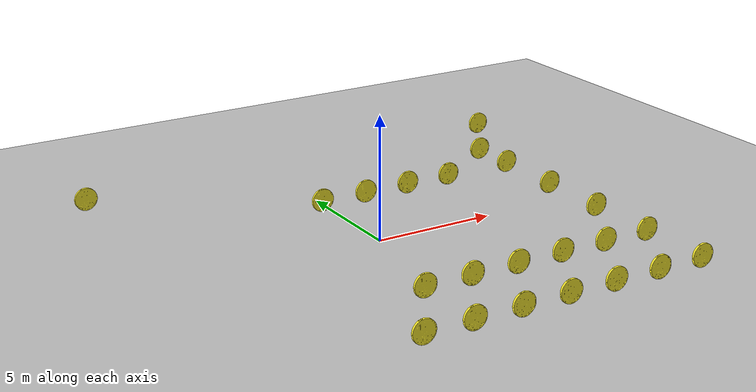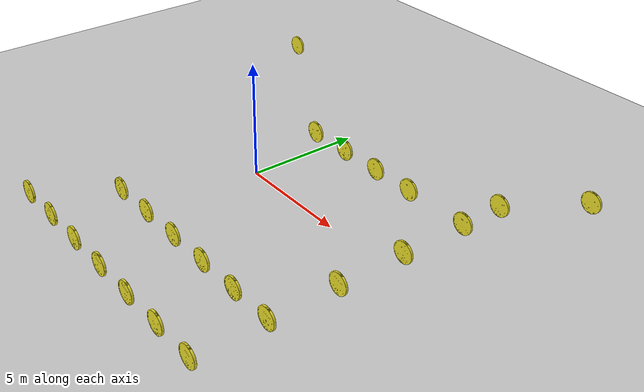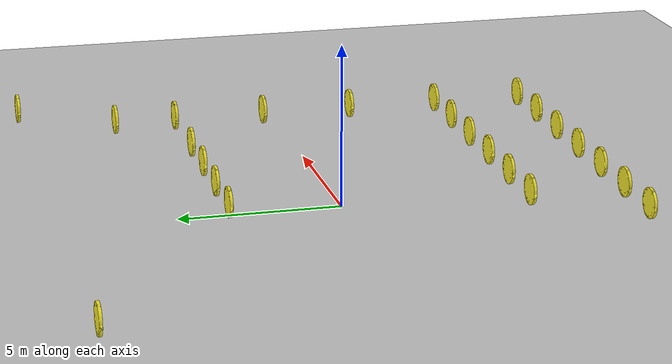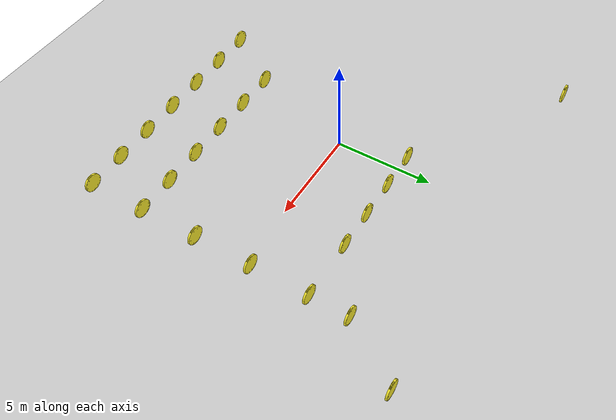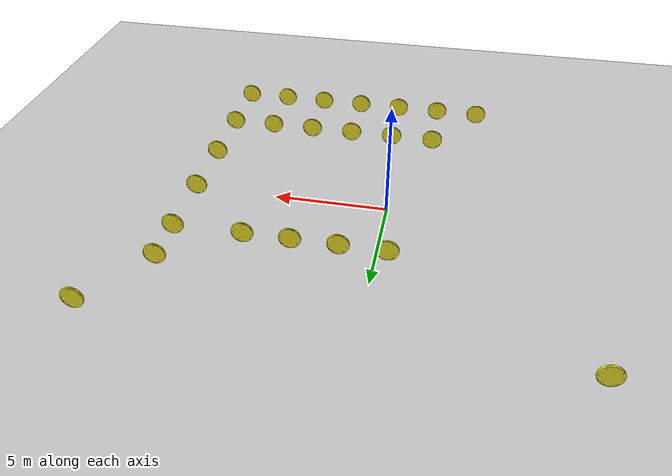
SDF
<sdf version="1.4">
 <world name="maze">
  <physics type="ode">
   <gravity>0 0 -9.81</gravity>
   <ode>
    <solver><type>quick</type><iters>50</iters><sor>1.4</sor></solver>
    <constraints>
     <cfm>0.0</cfm>
     <erp>0.2</erp>
     <contact_max_correcting_vel>100.0</contact_max_correcting_vel>
     <contact_surface_layer>0.0</contact_surface_layer>
    </constraints>
   </ode>
   <real_time_update_rate>1000</real_time_update_rate>
   <max_step_size>0.001</max_step_size>
  </physics>
  <scene><ambient>0.3 0.3 0.3 1.0</ambient></scene>
  <light type="directional" name="sun">
   <pose>0 0 100 0 0 0</pose>
   <diffuse>0.9 0.9 0.9 1</diffuse>
   <specular>0.1 0.1 0.1 1</specular>
   <attenuation>
    <range>1000</range>
    <constant>0.9</constant>
    <linear>0.01</linear>
    <quadratic>0.001</quadratic>
   </attenuation>
   <direction>-0.2 0.0 -1.0</direction>
  </light>
  <light type="point" name="light_bulb">
   <cast_shadows>false</cast_shadows>
   <pose>0 0 10 0 0 0</pose>
   <diffuse>0.5 0.5 0.5 1</diffuse>
   <specular>0.0 0.0 0.0 1</specular>
   <attenuation>
    <range>80</range>
    <constant>0.9</constant>
    <linear>0.01</linear>
    <quadratic>0.001</quadratic>
   </attenuation>
  </light>
  <include><uri>model://ground_plane</uri></include>
  <include><uri>model://challenge_coins</uri></include>
 </world>
</sdf>

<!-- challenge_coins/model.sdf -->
<!-- Only put coins in this model. All the links will spin -->
<sdf version='1.4'>
  <model name='challenge_coins'>
    <static>0</static>

    <link name='coin_1'>
      <pose>10.5 8.5 0.6 0 0 0</pose>
      <gravity>0</gravity>
      <visual name='coin_1_Visual'>
        <pose>0 0 0 0 0 0</pose>
        <geometry>
          <mesh>
            <uri>model://crazy_coins/meshes/coin.dae</uri>
            <scale>0.4 0.4 0.4</scale>
          </mesh>
        </geometry>
        <material>
          <script>
            <uri>file://media/materials/scripts/gazebo.material</uri>
            <name>Gazebo/Yellow</name>
          </script>
        </material>
      </visual>
    </link>

    <link name='coin_2'>
      <gravity>0</gravity>
      <pose>8.5 -8.5 0.6 0 0 0</pose>
      <visual name='coin_2_Visual'>
        <pose>0 0 0 0 0 0</pose>
        <geometry>
          <mesh>
            <uri>model://crazy_coins/meshes/coin.dae</uri>
            <scale>0.4 0.4 0.4</scale>
          </mesh>
        </geometry>
        <material>
          <script>
            <uri>file://media/materials/scripts/gazebo.material</uri>
            <name>Gazebo/Yellow</name>
          </script>
        </material>
      </visual>
    </link>

    <link name='coin_3'>
      <gravity>0</gravity>
      <pose>6.5 -8.5 0.6 0 0 0</pose>
      <visual name='coin_3_Visual'>
        <pose>0 0 0 0 0 0</pose>
        <geometry>
          <mesh>
            <uri>model://crazy_coins/meshes/coin.dae</uri>
            <scale>0.4 0.4 0.4</scale>
          </mesh>
        </geometry>
        <material>
          <script>
            <uri>file://media/materials/scripts/gazebo.material</uri>
            <name>Gazebo/Yellow</name>
          </script>
        </material>
      </visual>
    </link>

    <link name='coin_4'>
      <gravity>0</gravity>
      <pose>4.5 -8.5 0.6 0 0 0</pose>
      <visual name='coin_4_Visual'>
        <pose>0 0 0 0 0 0</pose>
        <geometry>
          <mesh>
            <uri>model://crazy_coins/meshes/coin.dae</uri>
            <scale>0.4 0.4 0.4</scale>
          </mesh>
        </geometry>
        <material>
          <script>
            <uri>file://media/materials/scripts/gazebo.material</uri>
            <name>Gazebo/Yellow</name>
          </script>
        </material>
      </visual>
    </link>

    <link name='coin_5'>
      <gravity>0</gravity>
      <pose>2.5 -8.5 0.6 0 0 0</pose>
      <visual name='coin_5_Visual'>
        <pose>0 0 0 0 0 0</pose>
        <geometry>
          <mesh>
            <uri>model://crazy_coins/meshes/coin.dae</uri>
            <scale>0.4 0.4 0.4</scale>
          </mesh>
        </geometry>
        <material>
          <script>
            <uri>file://media/materials/scripts/gazebo.material</uri>
            <name>Gazebo/Yellow</name>
          </script>
        </material>
      </visual>
    </link>

    <link name='coin_6'>
      <gravity>0</gravity>
      <pose>0.5 -8.5 0.6 0 0 0</pose>
      <visual name='coin_6_Visual'>
        <pose>0 0 0 0 0 0</pose>
        <geometry>
          <mesh>
            <uri>model://crazy_coins/meshes/coin.dae</uri>
            <scale>0.4 0.4 0.4</scale>
          </mesh>
        </geometry>
        <material>
          <script>
            <uri>file://media/materials/scripts/gazebo.material</uri>
            <name>Gazebo/Yellow</name>
          </script>
        </material>
      </visual>
    </link>

    <link name='coin_7'>
      <gravity>0</gravity>
      <pose>-1.5 -8.5 0.6 0 0 0</pose>
      <visual name='coin_7_Visual'>
        <pose>0 0 0 0 0 0</pose>
        <geometry>
          <mesh>
            <uri>model://crazy_coins/meshes/coin.dae</uri>
            <scale>0.4 0.4 0.4</scale>
          </mesh>
        </geometry>
        <material>
          <script>
            <uri>file://media/materials/scripts/gazebo.material</uri>
            <name>Gazebo/Yellow</name>
          </script>
        </material>
      </visual>
    </link>

    <link name='coin_8'>
      <gravity>0</gravity>
      <pose>-3.5 -8.5 0.6 0 0 0</pose>
      <visual name='coin_8_Visual'>
        <pose>0 0 0 0 0 0</pose>
        <geometry>
          <mesh>
            <uri>model://crazy_coins/meshes/coin.dae</uri>
            <scale>0.4 0.4 0.4</scale>
          </mesh>
        </geometry>
        <material>
          <script>
            <uri>file://media/materials/scripts/gazebo.material</uri>
            <name>Gazebo/Yellow</name>
          </script>
        </material>
      </visual>
    </link>

    <link name='coin_9'>
      <gravity>0</gravity>
      <pose>8.5 -5.5 0.6 0 0 0</pose>
      <visual name='coin_9_Visual'>
        <pose>0 0 0 0 0 0</pose>
        <geometry>
          <mesh>
            <uri>model://crazy_coins/meshes/coin.dae</uri>
            <scale>0.4 0.4 0.4</scale>
          </mesh>
        </geometry>
        <material>
          <script>
            <uri>file://media/materials/scripts/gazebo.material</uri>
            <name>Gazebo/Yellow</name>
          </script>
        </material>
      </visual>
    </link>

    <link name='coin_10'>
      <gravity>0</gravity>
      <pose>6.5 -5.5 0.6 0 0 0</pose>
      <visual name='coin_10_Visual'>
        <pose>0 0 0 0 0 0</pose>
        <geometry>
          <mesh>
            <uri>model://crazy_coins/meshes/coin.dae</uri>
            <scale>0.4 0.4 0.4</scale>
          </mesh>
        </geometry>
        <material>
          <script>
            <uri>file://media/materials/scripts/gazebo.material</uri>
            <name>Gazebo/Yellow</name>
          </script>
        </material>
      </visual>
    </link>

    <link name='coin_11'>
      <gravity>0</gravity>
      <pose>4.5 -5.5 0.6 0 0 0</pose>
      <visual name='coin_11_Visual'>
        <pose>0 0 0 0 0 0</pose>
        <geometry>
          <mesh>
            <uri>model://crazy_coins/meshes/coin.dae</uri>
            <scale>0.4 0.4 0.4</scale>
          </mesh>
        </geometry>
        <material>
          <script>
            <uri>file://media/materials/scripts/gazebo.material</uri>
            <name>Gazebo/Yellow</name>
          </script>
        </material>
      </visual>
    </link>

    <link name='coin_12'>
      <gravity>0</gravity>
      <pose>2.5 -5.5 0.6 0 0 0</pose>
      <visual name='coin_12_Visual'>
        <pose>0 0 0 0 0 0</pose>
        <geometry>
          <mesh>
            <uri>model://crazy_coins/meshes/coin.dae</uri>
            <scale>0.4 0.4 0.4</scale>
          </mesh>
        </geometry>
        <material>
          <script>
            <uri>file://media/materials/scripts/gazebo.material</uri>
            <name>Gazebo/Yellow</name>
          </script>
        </material>
      </visual>
    </link>

    <link name='coin_13'>
      <gravity>0</gravity>
      <pose>0.5 -5.5 0.6 0 0 0</pose>
      <visual name='coin_13_Visual'>
        <pose>0 0 0 0 0 0</pose>
        <geometry>
          <mesh>
            <uri>model://crazy_coins/meshes/coin.dae</uri>
            <scale>0.4 0.4 0.4</scale>
          </mesh>
        </geometry>
        <material>
          <script>
            <uri>file://media/materials/scripts/gazebo.material</uri>
            <name>Gazebo/Yellow</name>
          </script>
        </material>
      </visual>
    </link>

    <link name='coin_14'>
      <gravity>0</gravity>
      <pose>-1.5 -5.5 0.6 0 0 0</pose>
      <visual name='coin_14_Visual'>
        <pose>0 0 0 0 0 0</pose>
        <geometry>
          <mesh>
            <uri>model://crazy_coins/meshes/coin.dae</uri>
            <scale>0.4 0.4 0.4</scale>
          </mesh>
        </geometry>
        <material>
          <script>
            <uri>file://media/materials/scripts/gazebo.material</uri>
            <name>Gazebo/Yellow</name>
          </script>
        </material>
      </visual>
    </link>

    <link name='coin_15'>
      <gravity>0</gravity>
      <pose>8.5 -2.5 0.6 0 0 0</pose>
      <visual name='coin_15_Visual'>
        <pose>0 0 0 0 0 0</pose>
        <geometry>
          <mesh>
            <uri>model://crazy_coins/meshes/coin.dae</uri>
            <scale>0.4 0.4 0.4</scale>
          </mesh>
        </geometry>
        <material>
          <script>
            <uri>file://media/materials/scripts/gazebo.material</uri>
            <name>Gazebo/Yellow</name>
          </script>
        </material>
      </visual>
    </link>

    <link name='coin_16'>
      <gravity>0</gravity>
      <pose>8.5 0.5 0.6 0 0 0</pose>
      <visual name='coin_16_Visual'>
        <pose>0 0 0 0 0 0</pose>
        <geometry>
          <mesh>
            <uri>model://crazy_coins/meshes/coin.dae</uri>
            <scale>0.4 0.4 0.4</scale>
          </mesh>
        </geometry>
        <material>
          <script>
            <uri>file://media/materials/scripts/gazebo.material</uri>
            <name>Gazebo/Yellow</name>
          </script>
        </material>
      </visual>
    </link>

    <link name='coin_17'>
      <gravity>0</gravity>
      <pose>8.5 3.5 0.6 0 0 0</pose>
      <visual name='coin_17_Visual'>
        <pose>0 0 0 0 0 0</pose>
        <geometry>
          <mesh>
            <uri>model://crazy_coins/meshes/coin.dae</uri>
            <scale>0.4 0.4 0.4</scale>
          </mesh>
        </geometry>
        <material>
          <script>
            <uri>file://media/materials/scripts/gazebo.material</uri>
            <name>Gazebo/Yellow</name>
          </script>
        </material>
      </visual>
    </link>

    <link name='coin_18'>
      <gravity>0</gravity>
      <pose>8.5 5.5 0.6 0 0 0</pose>
      <visual name='coin_18_Visual'>
        <pose>0 0 0 0 0 0</pose>
        <geometry>
          <mesh>
            <uri>model://crazy_coins/meshes/coin.dae</uri>
            <scale>0.4 0.4 0.4</scale>
          </mesh>
        </geometry>
        <material>
          <script>
            <uri>file://media/materials/scripts/gazebo.material</uri>
            <name>Gazebo/Yellow</name>
          </script>
        </material>
      </visual>
    </link>

    <link name='coin_19'>
      <gravity>0</gravity>
      <pose>5.5 3.5 0.6 0 0 0</pose>
      <visual name='coin_19_Visual'>
        <pose>0 0 0 0 0 0</pose>
        <geometry>
          <mesh>
            <uri>model://crazy_coins/meshes/coin.dae</uri>
            <scale>0.4 0.4 0.4</scale>
          </mesh>
        </geometry>
        <material>
          <script>
            <uri>file://media/materials/scripts/gazebo.material</uri>
            <name>Gazebo/Yellow</name>
          </script>
        </material>
      </visual>
    </link>

    <link name='coin_20'>
      <gravity>0</gravity>
      <pose>3.5 3.5 0.6 0 0 0</pose>
      <visual name='coin_20_Visual'>
        <pose>0 0 0 0 0 0</pose>
        <geometry>
          <mesh>
            <uri>model://crazy_coins/meshes/coin.dae</uri>
            <scale>0.4 0.4 0.4</scale>
          </mesh>
        </geometry>
        <material>
          <script>
            <uri>file://media/materials/scripts/gazebo.material</uri>
            <name>Gazebo/Yellow</name>
          </script>
        </material>
      </visual>
    </link>

    <link name='coin_21'>
      <gravity>0</gravity>
      <pose>1.5 3.5 0.6 0 0 0</pose>
      <visual name='coin_21_Visual'>
        <pose>0 0 0 0 0 0</pose>
        <geometry>
          <mesh>
            <uri>model://crazy_coins/meshes/coin.dae</uri>
            <scale>0.4 0.4 0.4</scale>
          </mesh>
        </geometry>
        <material>
          <script>
            <uri>file://media/materials/scripts/gazebo.material</uri>
            <name>Gazebo/Yellow</name>
          </script>
        </material>
      </visual>
    </link>

    <link name='coin_22'>
      <gravity>0</gravity>
      <pose>-0.5 3.5 0.6 0 0 0</pose>
      <visual name='coin_22_Visual'>
        <pose>0 0 0 0 0 0</pose>
        <geometry>
          <mesh>
            <uri>model://crazy_coins/meshes/coin.dae</uri>
            <scale>0.4 0.4 0.4</scale>
          </mesh>
        </geometry>
        <material>
          <script>
            <uri>file://media/materials/scripts/gazebo.material</uri>
            <name>Gazebo/Yellow</name>
          </script>
        </material>
      </visual>
    </link>

    <link name='coin_23'>
      <gravity>0</gravity>
      <pose>-8.5 8.5 0.6 0 0 0</pose>
      <visual name='coin_23_Visual'>
        <pose>0 0 0 0 0 0</pose>
        <geometry>
          <mesh>
            <uri>model://crazy_coins/meshes/coin.dae</uri>
            <scale>0.4 0.4 0.4</scale>
          </mesh>
        </geometry>
        <material>
          <script>
            <uri>file://media/materials/scripts/gazebo.material</uri>
            <name>Gazebo/Yellow</name>
          </script>
        </material>
      </visual>
    </link>

    <plugin name="coins_manager_plugin" filename="libcoins_manager_plugin.so" >
      <goal_coin>coin_1</goal_coin>
      <robot_name>labrob</robot_name>
      <update_rate>1.0</update_rate>
      <spin_velocity>1.570796327</spin_velocity>
    </plugin>

  </model>
</sdf>
